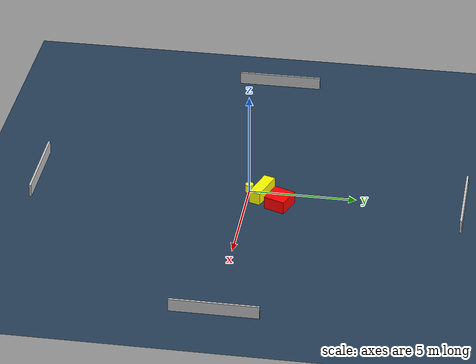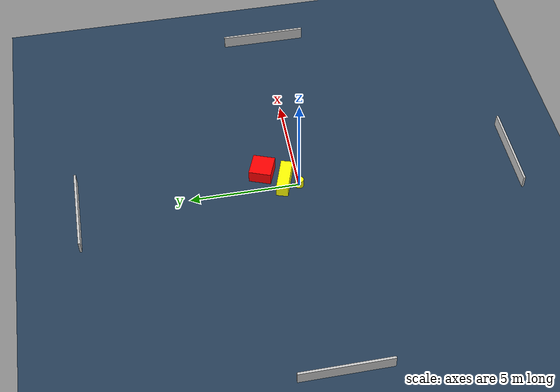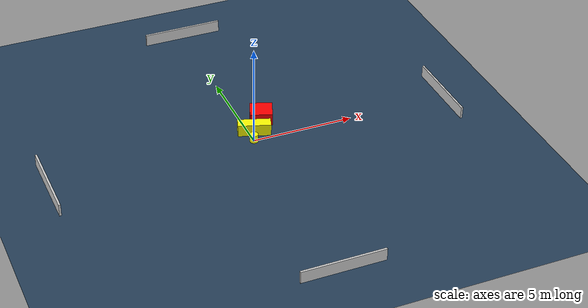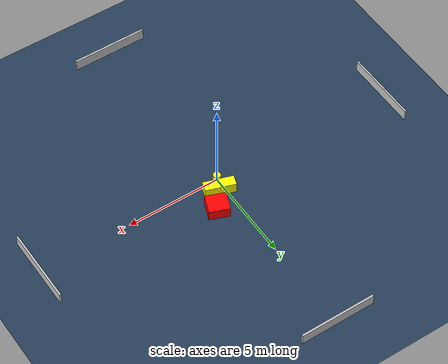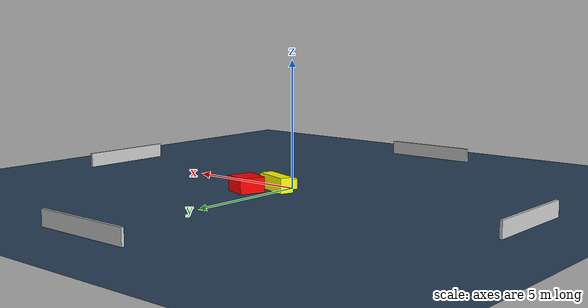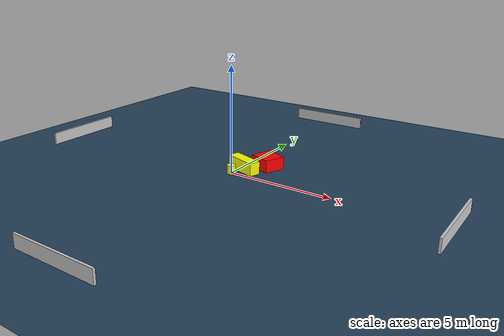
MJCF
<?xml version="1.0" ?>
<mujoco model="generated_environment">
  <option timestep="0.01" integrator="RK4" cone="elliptic"/>
  <default>
    <geom density="1"/>
  </default>
  <asset>
    <texture builtin="gradient" height="3072" name="skybox" rgb1="0.3 0.5 0.7" rgb2="0 0 0" type="skybox" width="512"/>
    <texture builtin="checker" height="300" name="groundplane" rgb1="0.2 0.3 0.4" rgb2="0.1 0.2 0.3" type="2d" width="300"/>
    <material name="groundplane" reflectance="0.2" texrepeat="5 5" texture="groundplane"/>
  </asset>
  <worldbody>
    <light dir="0 0 -1" directional="true" pos="0 0 1.5"/>
    <geom condim="3" friction="0.5 0.005 0.001" material="groundplane" name="floor" pos="0 0 0" size="0 0 0.05" type="plane"/>
    <body name="walls">
      <geom name="wall_1" condim="4" pos="-10.0 0.0 0.3" rgba="0.800000011920929 0.800000011920929 0.800000011920929 1.0" size="0.05 2.0 0.3" type="box"/>
      <geom name="wall_2" condim="4" pos="10.0 0.0 0.3" rgba="0.800000011920929 0.800000011920929 0.800000011920929 1.0" size="0.05 2.0 0.3" type="box"/>
      <geom name="wall_3" condim="4" pos="0.0 -10.0 0.3" rgba="0.800000011920929 0.800000011920929 0.800000011920929 1.0" size="2.0 0.05 0.3" type="box"/>
      <geom name="wall_4" condim="4" pos="0.0 10.0 0.3" rgba="0.800000011920929 0.800000011920929 0.800000011920929 1.0" size="2.0 0.05 0.3" type="box"/>
    </body>
    <body name="robot">
      <joint name="joint_x" type="slide" pos="0 0 0" axis="1 0 0"/>
      <joint name="joint_y" type="slide" pos="0 0 0" axis="0 1 0"/>
      <geom name="robot" type="cylinder" pos="0.0 0.0 0.2" size="0.2 0.2 0.0" mass="5.0" friction="1.0 0.005 0.0001" condim="4" rgba="1.0 1.0 0.0 1.0"/>
    </body>
    <body name="obstacle_1_movable">
      <geom name="obstacle_1_movable" condim="4" pos="0.2696309102547371 0.6326255508670362 0.3" euler="0 0 251.89497257976805" friction="0.0 0.005 0.001" rgba="1.0 1.0 0.0 1.0" size="0.2718697849930428 0.795016945027397 0.3" type="box" mass="0.1"/>
      <joint type="free"/>
    </body>
    <body name="obstacle_2_static">
      <geom name="obstacle_2_static" condim="4" pos="0.9961071099561059 1.5505507810842467 0.3" euler="0 0 338.8361194356215" friction="0.0 0.005 0.001" rgba="1.0 0.0 0.0 1.0" size="0.5422406995529636 0.5086166137978176 0.3" type="box"/>
    </body>
  </worldbody>
  <actuator>
    <motor name="actuator_x" joint="joint_x" gear="1" ctrlrange="-1 1"/>
    <motor name="actuator_y" joint="joint_y" gear="1" ctrlrange="-1 1"/>
  </actuator>
</mujoco>
